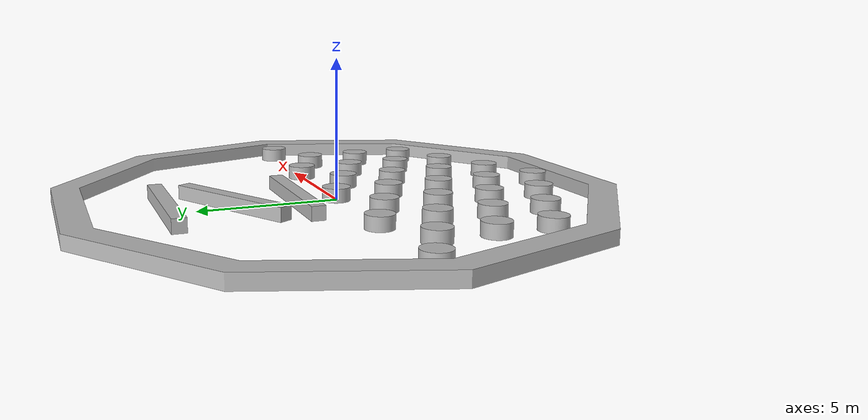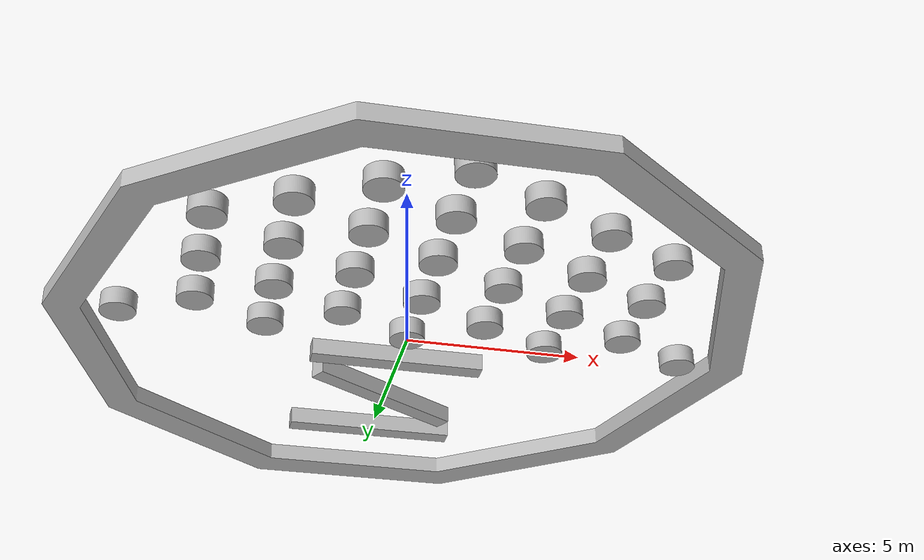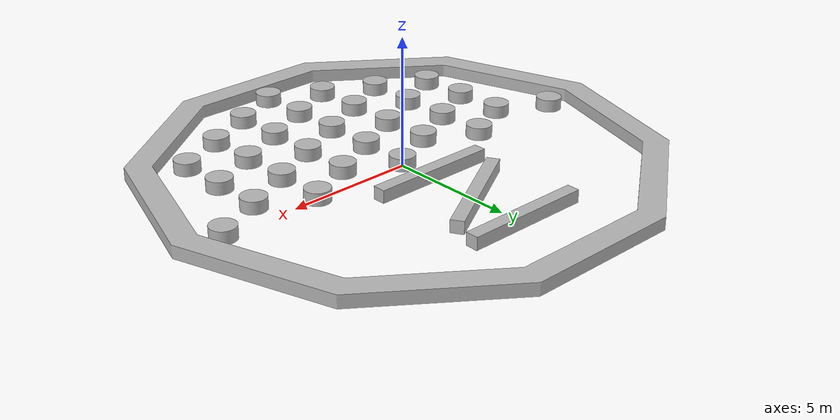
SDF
<?xml version="1.0" ?>

<sdf version="1.5">
    <model name="rileyWorld">
        <pose>0.0 0.0 0.0 0.0 0.0 0.0 </pose>
        <static>1</static>
        <link name="maze_anchor_link">
            <inertial>
                <pose>0.0 0 0 0 0 0</pose>
                <inertia>
                    <ixx>0.001</ixx>
                    <ixy>0.000</ixy>
                    <ixz>0.000</ixz>
                    <iyy>0.001</iyy>
                    <iyz>0.000</iyz>
                    <izz>0.001</izz>
                </inertia>
                <mass>50.0</mass>
            </inertial>
            <collision name="maze_collision">
                <pose>0.0 0 0 0 0 0</pose>
                <geometry>
                    <mesh>
                        <uri>model://rileyWorld/meshes/maze.STL</uri>
                        <scale>1.0 1.0 1.0</scale>
                    </mesh>
                </geometry>
                <surface>
                    <friction>
                        <ode>
                            <mu>0.5</mu>
                            <mu2>0.5</mu2>
                        </ode>
                    </friction>
                </surface>
            </collision>
            <visual name="maze_visual">
                <pose>0 0 0 0 0 0</pose>
                <geometry>
                    <mesh>
                        <uri>model://rileyWorld/meshes/maze.STL</uri>
                        <scale>1.0 1.0 1.0</scale>
                    </mesh>
                </geometry>
            </visual>
        </link>
    </model>
</sdf>
